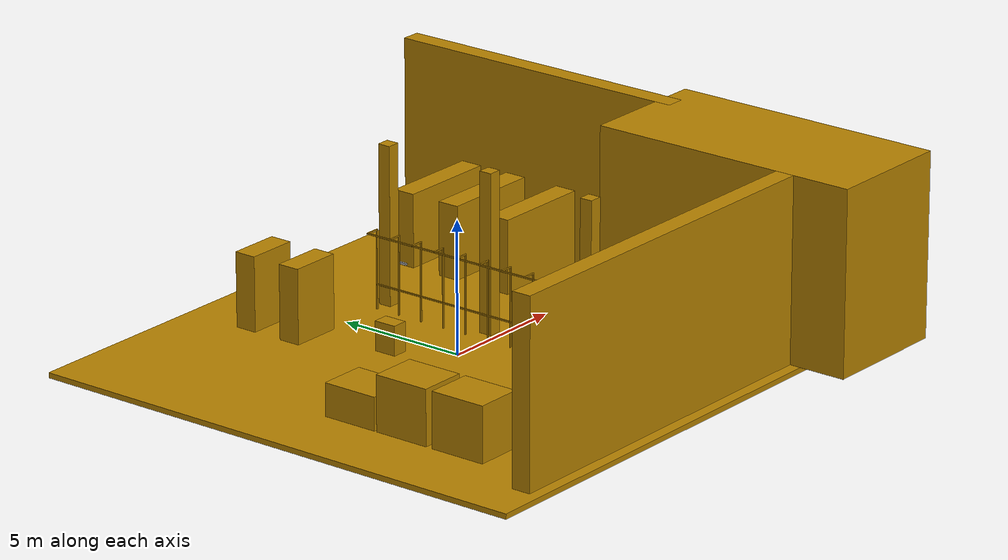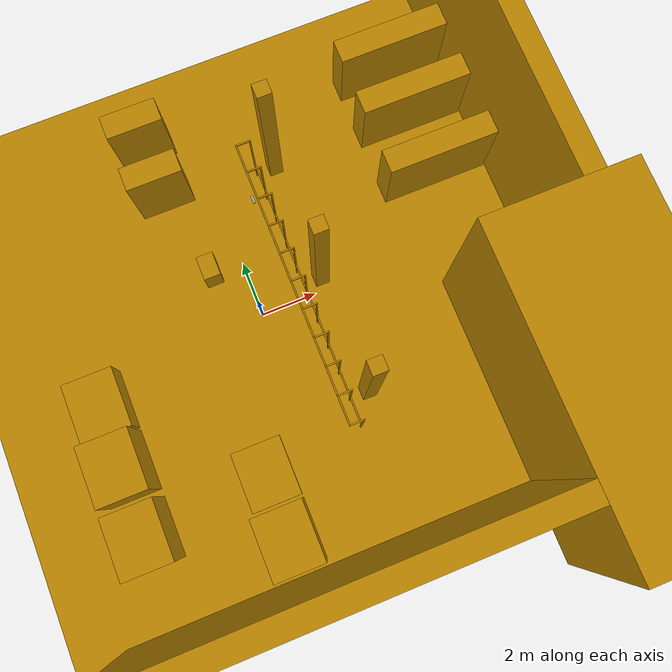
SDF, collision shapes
<?xml version="1.0" ?>
<sdf version='1.6'>

  <model name='environment'>
    <static>1</static>
    <link name="world"></link>

	  <model name='workcell'>
	    <static>1</static>
	    <pose frame=''>0 0 0 0 0 1.57</pose>
	    <include>
		  <uri>model://workcell_gilbreth</uri>
	    </include>
	  </model>

	  <model name='kinect_robot'>
	    <static>1</static>
	    <pose>1.1 3.3 2.3 0 1.57 0</pose>
	    <include>
		  <uri>model://kinect_robot</uri>
	    </include>
	  </model>

    <joint name="world_to_kinect_robot" type="fixed">
      <parent>world</parent>
      <child>kinect_robot::link</child>
    </joint>

    <joint name="world_to_workcell" type="fixed">
      <parent>world</parent>
      <child>workcell::link</child>
    </joint>

  </model>
</sdf>

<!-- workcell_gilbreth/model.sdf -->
<sdf version="1.6">
  <model name="workcell">
    <static>true</static>
    <link name="link">
      <visual name="visual">
        <geometry>
          <mesh>
            <uri>model://workcell_gilbreth/meshes/mesh.dae</uri>
          </mesh>
        </geometry>
      </visual>

      <collision name="floor">
        <pose>0 0 -0.1 0 0 0</pose>
        <geometry>
          <box>
            <size>20.1026 20.1026 0.2</size>
          </box>
        </geometry>

          <surface>
          <contact>
            <ode>
              <max_vel>0.0</max_vel>
              <min_depth>0.001</min_depth>
            </ode>
          </contact>
          </surface>
      </collision>

      <collision name="wall1">
        <pose>4.13686 -10.02116 3.48855 0 0 0</pose>
        <geometry>
          <box>
            <size>12.07683 0.72902 6.97771</size>
          </box>
        </geometry>
      </collision>

      <collision name="wall2">
        <pose>-6.58151 -8.924 3.48855 0 0 0</pose>
        <geometry>
          <box>
            <size>10.59206 5.00198 6.97771</size>
          </box>
        </geometry>
      </collision>

      <collision name="wall3">
        <pose>-9.25721 0.6135 3.48855 0 0 0</pose>
        <geometry>
          <box>
            <size>0.72902 15.29079 6.97771</size>
          </box>
        </geometry>
      </collision>

      <collision name="rack1">
        <pose>7.35056 1.74430 1.41643054 0 0 0</pose>
        <geometry>
          <box>
            <size>0.84444041 1.95580823 2.83286108</size>
          </box>
        </geometry>
      </collision>

      <collision name="rack2">
        <pose>5.36795 1.74430 1.41643054 0 0 0</pose>
        <geometry>
          <box>
            <size>0.84444041 1.95580823 2.83286108</size>
          </box>
        </geometry>
      </collision>

      <collision name="rack3">
        <pose>7.00142 -7.64670 1.41643054 0 0 0</pose>
        <geometry>
          <box>
            <size>0.84444041 3.91161646 2.83286108</size>
          </box>
        </geometry>
      </collision>

      <collision name="rack4">
        <pose>4.97338 -7.64670 1.41643054 0 0 0</pose>
        <geometry>
          <box>
            <size>0.84444041 3.91161646 2.83286108</size>
          </box>
        </geometry>
      </collision>

      <collision name="rack5">
        <pose>2.66949 -7.64670 1.41643054 0 0 0</pose>
        <geometry>
          <box>
            <size>0.84444041 3.91161646 2.83286108</size>
          </box>
        </geometry>
      </collision>

      <collision name="large_pallet1">
        <pose>-3.33609 6.31883 1.04257 0 0 0</pose>
        <geometry>
          <box>
            <size>2.14726 1.79349 2.08514</size>
          </box>
        </geometry>
      </collision>

      <collision name="large_pallet2">
        <pose>-5.74492 6.31883 1.04257 0 0 0</pose>
        <geometry>
          <box>
            <size>2.14726 1.79349 2.08514</size>
          </box>
        </geometry>
      </collision>

      <collision name="large_pallet3">
        <pose>-7.55868 1.91644 1.04257 0 0 0</pose>
        <geometry>
          <box>
            <size>2.14726 1.79432 2.08514</size>
          </box>
        </geometry>
      </collision>

      <collision name="empty_pallet1">
        <pose>-5.29667 1.91644 0.1636 0 0 0</pose>
        <geometry>
          <box>
            <size>2.14726 1.79349 0.32720</size>
          </box>
        </geometry>
      </collision>

      <collision name="box_pallet1">
        <pose>-1.09806 6.31883 0.61958 0 0 0</pose>
        <geometry>
          <box>
            <size>2.14726 1.79349 1.23916</size>
          </box>
        </geometry>
      </collision>

      <collision name="pole1">
        <pose>5.02174 -2.39478 3.022075 0 0 0</pose>
        <geometry>
          <box>
            <size>0.49161 0.49161 6.04415</size>
          </box>
        </geometry>
      </collision>

      <collision name="pole2">
        <pose>0.47071 -2.39478 3.022075 0 0 0</pose>
        <geometry>
          <box>
            <size>0.49161 0.49161 6.04415</size>
          </box>
        </geometry>
      </collision>

      <collision name="pole3">
        <pose>-3.93786 -2.39478 3.022075 0 0 0</pose>
        <geometry>
          <box>
            <size>0.49161 0.49161 6.04415</size>
          </box>
        </geometry>
      </collision>

      <collision name="control_panel">
        <pose>2.07015 1.16224 0.561315 0 0 0</pose>
        <geometry>
          <box>
            <size>0.86733 0.6001 1.12263</size>
          </box>
        </geometry>
      </collision>
      <visual name="conveyor_frame_1">
        <pose>0 -1.21 3 0 0 0</pose>
        <geometry>
          <box>
            <size>10.0 0.05 0.05</size>
          </box>
        </geometry>
        <material>
          <ambient>0.725490196 0.517647059 0 1</ambient>
          <diffuse>0.725490196 0.517647059 0 1</diffuse>
        </material>
      </visual>
      <collision name="conveyor_frame_1_collision">
        <pose>0 -1.21 3 0 0 0</pose>
        <geometry>
          <box>
            <size>10.0 0.05 0.05</size>
          </box>
        </geometry>
      </collision>

      <visual name="conveyor_frame_2">
        <pose>0 -1.7 .95 0 0 0</pose>
        <geometry>
          <box>
            <size>10.0 0.05 0.05</size>
          </box>
        </geometry>
        <material>
          <ambient>0.725490196 0.517647059 0 1</ambient>
          <diffuse>0.725490196 0.517647059 0 1</diffuse>
        </material>
      </visual>
      <collision name="conveyor_frame_2_collision">
        <pose>0 -1.7 .95 0 0 0</pose>
        <geometry>
          <box>
            <size>10.0 0.05 0.05</size>
          </box>
        </geometry>
      </collision>

      <visual name="conveyor_frame_3">
        <pose>5 -1.7 1.5 0 0 0</pose>
        <geometry>
          <box>
            <size>0.05 0.05 3.0</size>
          </box>
        </geometry>
        <material>
          <ambient>0.725490196 0.517647059 0 1</ambient>
          <diffuse>0.725490196 0.517647059 0 1</diffuse>
        </material>
      </visual>
      <collision name="conveyor_frame_3_collision">
        <pose>5 -1.7 1.5 0 0 0</pose>
        <geometry>
          <box>
            <size>0.05 0.05 3.0</size>
          </box>
        </geometry>
      </collision>
      <visual name="conveyor_frame_4">
        <pose>5 -1.455 3.0 0 0 0</pose>
        <geometry>
          <box>
            <size>0.05 0.54 .05</size>
          </box>
        </geometry>
        <material>
          <ambient>0.725490196 0.517647059 0 1</ambient>
          <diffuse>0.725490196 0.517647059 0 1</diffuse>
        </material>
      </visual>
      <collision name="conveyor_frame_3_collision">
        <pose>5 -1.455 3.0 0 0 0</pose>
        <geometry>
          <box>
            <size>0.05 0.54 .05</size>
          </box>
        </geometry>
      </collision>

      <visual name="conveyor_frame_5">
        <pose>4 -1.7 1.5 0 0 0</pose>
        <geometry>
          <box>
            <size>0.05 0.05 3.0</size>
          </box>
        </geometry>
        <material>
          <ambient>0.725490196 0.517647059 0 1</ambient>
          <diffuse>0.725490196 0.517647059 0 1</diffuse>
        </material>
      </visual>
      <collision name="conveyor_frame_5_collision">
        <pose>4 -1.7 1.5 0 0 0</pose>
        <geometry>
          <box>
            <size>0.05 0.05 3.0</size>
          </box>
        </geometry>
      </collision>
      <visual name="conveyor_frame_6">
        <pose>4 -1.455 3.0 0 0 0</pose>
        <geometry>
          <box>
            <size>0.05 0.54 .05</size>
          </box>
        </geometry>
        <material>
          <ambient>0.725490196 0.517647059 0 1</ambient>
          <diffuse>0.725490196 0.517647059 0 1</diffuse>
        </material>
      </visual>
      <collision name="conveyor_frame_6_collision">
        <pose>4 -1.455 3.0 0 0 0</pose>
        <geometry>
          <box>
            <size>0.05 0.54 .05</size>
          </box>
        </geometry>
      </collision>

      <visual name="conveyor_frame_7">
        <pose>3 -1.7 1.5 0 0 0</pose>
        <geometry>
          <box>
            <size>0.05 0.05 3.0</size>
          </box>
        </geometry>
        <material>
          <ambient>0.725490196 0.517647059 0 1</ambient>
          <diffuse>0.725490196 0.517647059 0 1</diffuse>
        </material>
      </visual>
      <collision name="conveyor_frame_7_collision">
        <pose>3 -1.7 1.5 0 0 0</pose>
        <geometry>
          <box>
            <size>0.05 0.05 3.0</size>
          </box>
        </geometry>
      </collision>
      <visual name="conveyor_frame_8">
        <pose>3 -1.455 3.0 0 0 0</pose>
        <geometry>
          <box>
            <size>0.05 0.54 .05</size>
          </box>
        </geometry>
        <material>
          <ambient>0.725490196 0.517647059 0 1</ambient>
          <diffuse>0.725490196 0.517647059 0 1</diffuse>
        </material>
      </visual>
      <collision name="conveyor_frame_8_collision">
        <pose>3 -1.455 3.0 0 0 0</pose>
        <geometry>
          <box>
            <size>0.05 0.54 .05</size>
          </box>
        </geometry>
      </collision>

      <visual name="conveyor_frame_9">
        <pose>2 -1.7 1.5 0 0 0</pose>
        <geometry>
          <box>
            <size>0.05 0.05 3.0</size>
          </box>
        </geometry>
        <material>
          <ambient>0.725490196 0.517647059 0 1</ambient>
          <diffuse>0.725490196 0.517647059 0 1</diffuse>
        </material>
      </visual>
      <collision name="conveyor_frame_9_collision">
        <pose>2 -1.7 1.5 0 0 0</pose>
        <geometry>
          <box>
            <size>0.05 0.05 3.0</size>
          </box>
        </geometry>
      </collision>
      <visual name="conveyor_frame_10">
        <pose>2 -1.455 3.0 0 0 0</pose>
        <geometry>
          <box>
            <size>0.05 0.54 .05</size>
          </box>
        </geometry>
        <material>
          <ambient>0.725490196 0.517647059 0 1</ambient>
          <diffuse>0.725490196 0.517647059 0 1</diffuse>
        </material>
      </visual>
      <collision name="conveyor_frame_10_collision">
        <pose>2 -1.455 3.0 0 0 0</pose>
        <geometry>
          <box>
            <size>0.05 0.54 .05</size>
          </box>
        </geometry>
      </collision>

      <visual name="conveyor_frame_11">
        <pose>1 -1.7 1.5 0 0 0</pose>
        <geometry>
          <box>
            <size>0.05 0.05 3.0</size>
          </box>
        </geometry>
        <material>
          <ambient>0.725490196 0.517647059 0 1</ambient>
          <diffuse>0.725490196 0.517647059 0 1</diffuse>
        </material>
      </visual>
      <collision name="conveyor_frame_11_collision">
        <pose>1 -1.7 1.5 0 0 0</pose>
        <geometry>
          <box>
            <size>0.05 0.05 3.0</size>
          </box>
        </geometry>
      </collision>
      <visual name="conveyor_frame_12">
        <pose>1 -1.455 3.0 0 0 0</pose>
        <geometry>
          <box>
            <size>0.05 0.54 .05</size>
          </box>
        </geometry>
        <material>
          <ambient>0.725490196 0.517647059 0 1</ambient>
          <diffuse>0.725490196 0.517647059 0 1</diffuse>
        </material>
      </visual>
      <collision name="conveyor_frame_12_collision">
        <pose>1 -1.455 3.0 0 0 0</pose>
        <geometry>
          <box>
            <size>0.05 0.54 .05</size>
          </box>
        </geometry>
      </collision>

      <visual name="conveyor_frame_13">
        <pose>0 -1.7 1.5 0 0 0</pose>
        <geometry>
          <box>
            <size>0.05 0.05 3.0</size>
          </box>
        </geometry>
        <material>
          <ambient>0.725490196 0.517647059 0 1</ambient>
          <diffuse>0.725490196 0.517647059 0 1</diffuse>
        </material>
      </visual>
      <collision name="conveyor_frame_13_collision">
        <pose>0 -1.7 1.5 0 0 0</pose>
        <geometry>
          <box>
            <size>0.05 0.05 3.0</size>
          </box>
        </geometry>
      </collision>
      <visual name="conveyor_frame_14">
        <pose>0 -1.455 3.0 0 0 0</pose>
        <geometry>
          <box>
            <size>0.05 0.54 .05</size>
          </box>
        </geometry>
        <material>
          <ambient>0.725490196 0.517647059 0 1</ambient>
          <diffuse>0.725490196 0.517647059 0 1</diffuse>
        </material>
      </visual>
      <collision name="conveyor_frame_14_collision">
        <pose>0 -1.455 3.0 0 0 0</pose>
        <geometry>
          <box>
            <size>0.05 0.54 .05</size>
          </box>
        </geometry>
      </collision>

      <visual name="conveyor_frame_15">
        <pose>-1 -1.7 1.5 0 0 0</pose>
        <geometry>
          <box>
            <size>0.05 0.05 3.0</size>
          </box>
        </geometry>
        <material>
          <ambient>0.725490196 0.517647059 0 1</ambient>
          <diffuse>0.725490196 0.517647059 0 1</diffuse>
        </material>
      </visual>
      <collision name="conveyor_frame_15_collision">
        <pose>-1 -1.7 1.5 0 0 0</pose>
        <geometry>
          <box>
            <size>0.05 0.05 3.0</size>
          </box>
        </geometry>
      </collision>
      <visual name="conveyor_frame_16">
        <pose>-1 -1.455 3.0 0 0 0</pose>
        <geometry>
          <box>
            <size>0.05 0.54 .05</size>
          </box>
        </geometry>
        <material>
          <ambient>0.725490196 0.517647059 0 1</ambient>
          <diffuse>0.725490196 0.517647059 0 1</diffuse>
        </material>
      </visual>
      <collision name="conveyor_frame_16_collision">
        <pose>-1 -1.455 3.0 0 0 0</pose>
        <geometry>
          <box>
            <size>0.05 0.54 .05</size>
          </box>
        </geometry>
      </collision>

      <visual name="conveyor_frame_17">
        <pose>-2 -1.7 1.5 0 0 0</pose>
        <geometry>
          <box>
            <size>0.05 0.05 3.0</size>
          </box>
        </geometry>
        <material>
          <ambient>0.725490196 0.517647059 0 1</ambient>
          <diffuse>0.725490196 0.517647059 0 1</diffuse>
        </material>
      </visual>
      <collision name="conveyor_frame_17_collision">
        <pose>-2 -1.7 1.5 0 0 0</pose>
        <geometry>
          <box>
            <size>0.05 0.05 3.0</size>
          </box>
        </geometry>
      </collision>
      <visual name="conveyor_frame_18">
        <pose>-2 -1.455 3.0 0 0 0</pose>
        <geometry>
          <box>
            <size>0.05 0.54 .05</size>
          </box>
        </geometry>
        <material>
          <ambient>0.725490196 0.517647059 0 1</ambient>
          <diffuse>0.725490196 0.517647059 0 1</diffuse>
        </material>
      </visual>
      <collision name="conveyor_frame_18_collision">
        <pose>-2 -1.455 3.0 0 0 0</pose>
        <geometry>
          <box>
            <size>0.05 0.54 .05</size>
          </box>
        </geometry>
      </collision>

      <visual name="conveyor_frame_19">
        <pose>-3 -1.7 1.5 0 0 0</pose>
        <geometry>
          <box>
            <size>0.05 0.05 3.0</size>
          </box>
        </geometry>
        <material>
          <ambient>0.725490196 0.517647059 0 1</ambient>
          <diffuse>0.725490196 0.517647059 0 1</diffuse>
        </material>
      </visual>
      <collision name="conveyor_frame_19_collision">
        <pose>-3 -1.7 1.5 0 0 0</pose>
        <geometry>
          <box>
            <size>0.05 0.05 3.0</size>
          </box>
        </geometry>
      </collision>
      <visual name="conveyor_frame_20">
        <pose>-3 -1.455 3.0 0 0 0</pose>
        <geometry>
          <box>
            <size>0.05 0.54 .05</size>
          </box>
        </geometry>
        <material>
          <ambient>0.725490196 0.517647059 0 1</ambient>
          <diffuse>0.725490196 0.517647059 0 1</diffuse>
        </material>
      </visual>
      <collision name="conveyor_frame_20_collision">
        <pose>-3 -1.455 3.0 0 0 0</pose>
        <geometry>
          <box>
            <size>0.05 0.54 .05</size>
          </box>
        </geometry>
      </collision>

      <visual name="conveyor_frame_21">
        <pose>-4 -1.7 1.5 0 0 0</pose>
        <geometry>
          <box>
            <size>0.05 0.05 3.0</size>
          </box>
        </geometry>
        <material>
          <ambient>0.725490196 0.517647059 0 1</ambient>
          <diffuse>0.725490196 0.517647059 0 1</diffuse>
        </material>
      </visual>
      <collision name="conveyor_frame_21_collision">
        <pose>-4 -1.7 1.5 0 0 0</pose>
        <geometry>
          <box>
            <size>0.05 0.05 3.0</size>
          </box>
        </geometry>
      </collision>
      <visual name="conveyor_frame_22">
        <pose>-4 -1.455 3.0 0 0 0</pose>
        <geometry>
          <box>
            <size>0.05 0.54 .05</size>
          </box>
        </geometry>
        <material>
          <ambient>0.725490196 0.517647059 0 1</ambient>
          <diffuse>0.725490196 0.517647059 0 1</diffuse>
        </material>
      </visual>
      <collision name="conveyor_frame_22_collision">
        <pose>-4 -1.455 3.0 0 0 0</pose>
        <geometry>
          <box>
            <size>0.05 0.54 .05</size>
          </box>
        </geometry>
      </collision>

      <visual name="conveyor_frame_23">
        <pose>-5 -1.7 1.5 0 0 0</pose>
        <geometry>
          <box>
            <size>0.05 0.05 3.0</size>
          </box>
        </geometry>
        <material>
          <ambient>0.725490196 0.517647059 0 1</ambient>
          <diffuse>0.725490196 0.517647059 0 1</diffuse>
        </material>
      </visual>
      <collision name="conveyor_frame_23_collision">
        <pose>-5 -1.7 1.5 0 0 0</pose>
        <geometry>
          <box>
            <size>0.05 0.05 3.0</size>
          </box>
        </geometry>
      </collision>
      <visual name="conveyor_frame_24">
        <pose>-5 -1.455 3.0 0 0 0</pose>
        <geometry>
          <box>
            <size>0.05 0.54 .05</size>
          </box>
        </geometry>
        <material>
          <ambient>0.725490196 0.517647059 0 1</ambient>
          <diffuse>0.725490196 0.517647059 0 1</diffuse>
        </material>
      </visual>
      <collision name="conveyor_frame_24_collision">
        <pose>-5 -1.455 3.0 0 0 0</pose>
        <geometry>
          <box>
            <size>0.05 0.54 .05</size>
          </box>
        </geometry>
      </collision>
    </link>

  </model>
</sdf>

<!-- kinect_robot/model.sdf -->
<sdf version='1.4'>

  <model name='kinect_robot'>
	<static>1</static>
	<link name="link">
	  <gravity>false</gravity>
      <inertial>
        <mass>0.1</mass>
        <inertia>
          <ixx>0.000166667</ixx>
          <iyy>0.000166667</iyy>
          <izz>0.000166667</izz>
        </inertia>
      </inertial>

	  <visual name="visual">
        <geometry>
          <mesh>
            <uri>model://kinect/meshes/kinect.dae</uri>
          </mesh>
        </geometry>
      </visual>

	  <collision name="collision">
        <geometry>
          <box>
            <size>0.073000 0.276000 0.072000</size>
          </box>
        </geometry>
      </collision>

	  <sensor name="camera" type="depth">
        <update_rate>20</update_rate>
        <camera>
          <horizontal_fov>1.047198</horizontal_fov>
          <image>
            <width>640</width>
            <height>480</height>
            <format>R8G8B8</format>
          </image>
          <clip>
            <near>0.05</near>
            <far>3</far>
          </clip>
	    </camera>

	    <plugin name="camera_plugin" filename="libgazebo_ros_openni_kinect.so">
          <baseline>0.2</baseline>
          <alwaysOn>true</alwaysOn>

-->

          <updateRate>0.0</updateRate>
          <cameraName>kinect1</cameraName>
          <imageTopicName>depth/image_raw</imageTopicName>
          <cameraInfoTopicName>depth/camera_info</cameraInfoTopicName>
          <depthImageTopicName>depth/image_raw</depthImageTopicName>
          <depthImageInfoTopicName>depth/camera_info</depthImageInfoTopicName>
          <pointCloudTopicName>depth/points</pointCloudTopicName>
          <frameName>kinect_camera_frame</frameName>
          <pointCloudCutoff>0.05</pointCloudCutoff>
          <distortionK1>0</distortionK1>
          <distortionK2>0</distortionK2>
          <distortionK3>0</distortionK3>
          <distortionT1>0</distortionT1>
          <distortionT2>0</distortionT2>
          <CxPrime>0</CxPrime>
          <Cx>0</Cx>
          <Cy>0</Cy>
          <focalLength>0</focalLength>
          <hackBaseline>0</hackBaseline>
        </plugin>
      </sensor>

	</link>
  </model>
</sdf>
